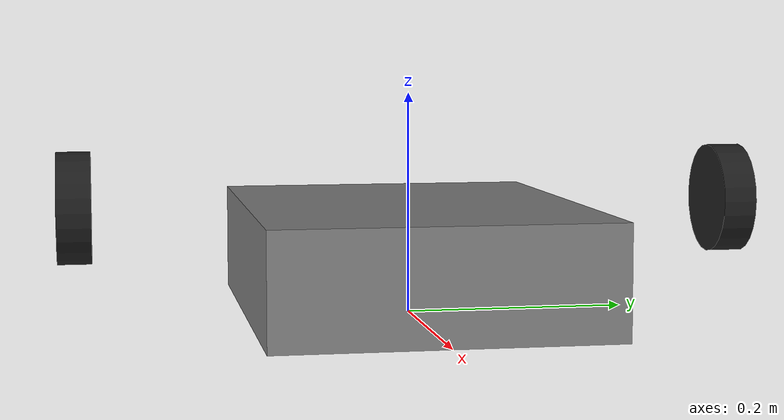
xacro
<?xml version="1.0"?>
<robot xmlns:xacro="http://ros.org/wiki/xacro" name="robot_core">

  <!-- Include inertial macros -->
  <xacro:include filename="$(find diner_waitress_robot)/description/inertial_macros.xacro" />

  <!-- Base Link -->
  <link name="base_link">
    <visual>
      <geometry>
        <box size="0.4 0.3 0.1"/>
      </geometry>
      <origin xyz="0 0 0.05"/>
      <material name="grey">
        <color rgba="0.5 0.5 0.5 1.0"/>
      </material>
    </visual>
    <xacro:inertial_box mass="3.0" size="0.4 0.3 0.1"/>
  </link>

  <!-- Right Wheel -->
  <link name="right_wheel">
    <visual>
      <geometry>
        <cylinder radius="0.05" length="0.03"/>
      </geometry>
      <origin xyz="0 -0.15 0.05" rpy="1.5708 0 0"/>
      <material name="black"/>
    </visual>
    <xacro:inertial_cylinder mass="0.3" radius="0.05" length="0.03"/>
  </link>

  <joint name="right_wheel_joint" type="continuous">
    <parent link="base_link"/>
    <child link="right_wheel"/>
    <origin xyz="0 -0.15 0.05" rpy="0 0 0"/>
    <axis xyz="0 1 0"/>
    <limit effort="10.0" velocity="10.0"/>
  </joint>

  <!-- Left Wheel -->
  <link name="left_wheel">
    <visual>
      <geometry>
        <cylinder radius="0.05" length="0.03"/>
      </geometry>
      <origin xyz="0 0.15 0.05" rpy="1.5708 0 0"/>
      <material name="black"/>
    </visual>
    <xacro:inertial_cylinder mass="0.3" radius="0.05" length="0.03"/>
  </link>

  <joint name="left_wheel_joint" type="continuous">
    <parent link="base_link"/>
    <child link="left_wheel"/>
    <origin xyz="0 0.15 0.05" rpy="0 0 0"/>
    <axis xyz="0 1 0"/>
    <limit effort="10.0" velocity="10.0"/>
  </joint>

  <!-- Caster Wheel (bebas bergerak) -->
  <link name="caster_wheel">
    <visual>
      <geometry>
        <sphere radius="0.03"/>
      </geometry>
      <origin xyz="-0.15 0 0.03"/>
      <material name="black"/>
    </visual>
    <xacro:inertial_sphere mass="0.1" radius="0.03"/>
  </link>

  <joint name="caster_wheel_joint" type="fixed">
    <parent link="base_link"/>
    <child link="caster_wheel"/>
    <origin xyz="-0.15 0 0.03"/>
  </joint>

</robot>

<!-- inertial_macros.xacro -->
<robot xmlns:xacro="http://ros.org/wiki/xacro" name="inertial_macros">

  <!-- Macros to auto-generate inertial values for common geometries -->

  <!-- Box -->
  <xacro:macro name="inertial_box" params="mass size">
    <inertial>
      <mass value="${mass}"/>
      <origin xyz="0 0 0" rpy="0 0 0"/>
      <inertia ixx="${(1/12.0)*mass*(pow(size[1],2)+pow(size[2],2))}"
               iyy="${(1/12.0)*mass*(pow(size[0],2)+pow(size[2],2))}"
               izz="${(1/12.0)*mass*(pow(size[0],2)+pow(size[1],2))}"
               ixy="0.0" ixz="0.0" iyz="0.0"/>
    </inertial>
  </xacro:macro>

  <!-- Cylinder -->
  <xacro:macro name="inertial_cylinder" params="mass radius length">
    <inertial>
      <mass value="${mass}"/>
      <origin xyz="0 0 0" rpy="0 0 0"/>
      <inertia ixx="${(1/12.0)*mass*(3*pow(radius,2)+pow(length,2))}"
               iyy="${(1/2.0)*mass*pow(radius,2)}"
               izz="${(1/12.0)*mass*(3*pow(radius,2)+pow(length,2))}"
               ixy="0.0" ixz="0.0" iyz="0.0"/>
    </inertial>
  </xacro:macro>

  <!-- Sphere -->
  <xacro:macro name="inertial_sphere" params="mass radius">
    <inertial>
      <mass value="${mass}"/>
      <origin xyz="0 0 0" rpy="0 0 0"/>
      <inertia ixx="${(2/5.0)*mass*pow(radius,2)}"
               iyy="${(2/5.0)*mass*pow(radius,2)}"
               izz="${(2/5.0)*mass*pow(radius,2)}"
               ixy="0.0" ixz="0.0" iyz="0.0"/>
    </inertial>
  </xacro:macro>

</robot>
